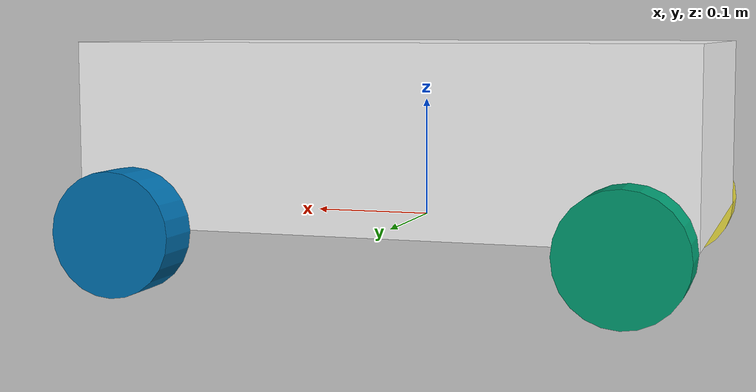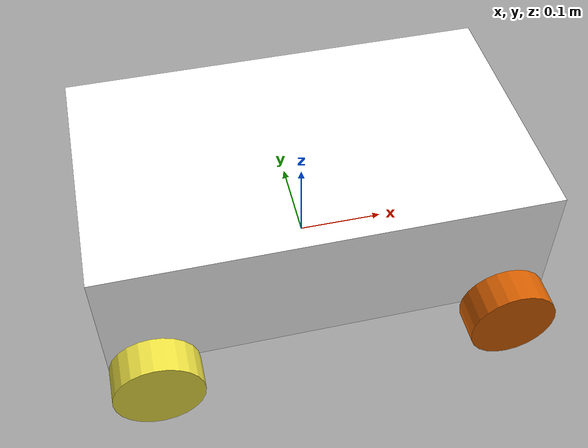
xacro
<?xml version="1.0"?>
<robot xmlns:xacro="http://www.ros.org/wiki/xacro">

  <!-- Included macros -->
  <xacro:include filename="inertial_macros.xacro"/>

  <!-- Constants -->
  <xacro:property name="chassisLength" value="0.5"/>
  <xacro:property name="chassisWidth" value="0.3"/>
  <xacro:property name="chassisHeight" value="0.15"/>
  <xacro:property name="chassisOrigin" value="${chassisLength/2} 0 ${chassisHeight/2}"/>
  <xacro:property name="chassisJointOrigin" value="-${chassisLength/2} 0 0"/>
  <xacro:property name="chassisMass" value="0.5"/>

  <xacro:property name="wheelRadius" value="0.05"/>
  <xacro:property name="wheelLength" value="0.04"/>
  <xacro:property name="wheelMass" value="0.1"/>
  <xacro:property name="wheelOrigin" value="0 0 0"/>

  <xacro:property name="wheel_x_offset" value="0.2"/>
  <xacro:property name="wheel_y_offset" value="0.175"/>
  <xacro:property name="wheel_left_axis" value="0 0 1"/>
  <xacro:property name="wheel_right_axis" value="0 0 -1"/>

  <!-- Materials -->
  <material name="white">
    <color rgba="1 1 1 1"/>
  </material>

  <material name="orange">
    <color rgba="1 0.3 0.1 1"/>
  </material>

  <material name="blue">
    <color rgba="0.2 0.2 1 1"/>
  </material>

  <material name="black">
    <color rgba="0 0 0 1"/>
  </material>

  <!-- BASE LINK -->
  <link name="base_link"></link>

  <!-- CHASSIS LINK -->
  <joint name="chassis_joint" type="fixed">
    <parent link="base_link"/>
    <child link="chassis"/>
    <origin xyz="${chassisJointOrigin}"/>
  </joint>

  <link name="chassis">
    <visual>
      <origin xyz="${chassisOrigin}" rpy="0 0 0"/>
      <geometry>
        <box size="${chassisLength} ${chassisWidth} ${chassisHeight}"/>
      </geometry>
      <material name="white"/>
    </visual>
    <collision>
      <origin xyz="${chassisOrigin}" rpy="0 0 0"/>
      <geometry>
        <box size="${chassisLength} ${chassisWidth} ${chassisHeight}"/>
      </geometry>
    </collision>
    <xacro:inertial_box mass="${chassisMass}" x="${chassisLength}" y="${chassisWidth}" z="${chassisHeight}">
      <origin xyz="${chassisOrigin}" rpy="0 0 0"/>
    </xacro:inertial_box>
  </link>

  <!-- FRONT WHEELS LINK -->
  <joint name="front_left_wheel_joint" type="continuous">
    <parent link="base_link"/>
    <child link="front_left_wheel"/>
    <origin xyz="-${wheel_x_offset} ${wheel_y_offset} 0" rpy="-${pi/2} 0 0"/>
    <axis xyz="${wheel_left_axis}"/>
  </joint>

  <link name="front_left_wheel">
    <visual>
      <geometry>
        <cylinder radius="${wheelRadius}" length="${wheelLength}"/>
      </geometry>
      <materia name="blue"/>
    </visual>
    <collision>
      <geometry>
        <cylinder radius="${wheelRadius}" length="${wheelLength}"/>
      </geometry>
    </collision>
    <xacro:inertial_cylinder mass="${wheelMass}" radius="${wheelRadius}" length="${wheelLength}">
      <origin xyz="${wheelOrigin}" rpy="0 0 0"/>
    </xacro:inertial_cylinder>
  </link>

  <joint name="front_right_wheel_joint" type="continuous">
    <parent link="base_link"/>
    <child link="front_right_wheel"/>
    <origin xyz="-${wheel_x_offset} -${wheel_y_offset} 0" rpy="${pi/2} 0 0"/>
    <axis xyz="${wheel_right_axis}"/>
  </joint>

  <link name="front_right_wheel">
    <visual>
      <geometry>
        <cylinder radius="${wheelRadius}" length="${wheelLength}"/>
      </geometry>
      <materia name="blue"/>
    </visual>
    <collision>
      <geometry>
        <cylinder radius="${wheelRadius}" length="${wheelLength}"/>
      </geometry>
    </collision>
    <xacro:inertial_cylinder mass="${wheelMass}" radius="${wheelRadius}" length="${wheelLength}">
      <origin xyz="${wheelOrigin}" rpy="0 0 0"/>
    </xacro:inertial_cylinder>
  </link>

  <!-- REAR WHEELS LINK -->
  <joint name="rear_left_wheel_joint" type="continuous">
    <parent link="base_link"/>
    <child link="rear_left_wheel"/>
    <origin xyz="${wheel_x_offset} ${wheel_y_offset} 0" rpy="-${pi/2} 0 0"/>
    <axis xyz="${wheel_left_axis}"/>
  </joint>

  <link name="rear_left_wheel">
    <visual>
      <geometry>
        <cylinder radius="${wheelRadius}" length="${wheelLength}"/>
      </geometry>
      <materia name="blue"/>
    </visual>
    <collision>
      <geometry>
        <cylinder radius="${wheelRadius}" length="${wheelLength}"/>
      </geometry>
    </collision>
    <xacro:inertial_cylinder mass="${wheelMass}" radius="${wheelRadius}" length="${wheelLength}">
      <origin xyz="${wheelOrigin}" rpy="0 0 0"/>
    </xacro:inertial_cylinder>
  </link>

  <joint name="rear_right_wheel_joint" type="continuous">
    <parent link="base_link"/>
    <child link="rear_right_wheel"/>
    <origin xyz="${wheel_x_offset} -${wheel_y_offset} 0" rpy="${pi/2} 0 0"/>
    <axis xyz="${wheel_right_axis}"/>
  </joint>

  <link name="rear_right_wheel">
    <visual>
      <geometry>
        <cylinder radius="${wheelRadius}" length="${wheelLength}"/>
      </geometry>
      <materia name="blue"/>
    </visual>
    <collision>
      <geometry>
        <cylinder radius="${wheelRadius}" length="${wheelLength}"/>
      </geometry>
    </collision>
    <xacro:inertial_cylinder mass="${wheelMass}" radius="${wheelRadius}" length="${wheelLength}">
      <origin xyz="${wheelOrigin}" rpy="0 0 0"/>
    </xacro:inertial_cylinder>
  </link>

</robot>

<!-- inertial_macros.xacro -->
<robot xmlns:xacro="http://www.ros.org/wiki/xacro">

  <xacro:macro name="inertial_box" params="mass x y z *origin">
    <inertial>
      <xacro:insert_block name="origin"/>
      <mass value="${mass}"/>
      <inertia ixx="${(1/12) * mass * (y*y + z*z)}" ixy="0.0" ixz="0.0"
                iyy="${(1/12) * mass * (x*x + z*z)}" iyz="0.0"
                izz="${(1/12) * mass * (x*x + y*y)}" />
    </inertial>
  </xacro:macro>

  <xacro:macro name="inertial_cylinder" params="mass length radius *origin">
    <inertial>
      <xacro:insert_block name="origin"/>
      <mass value="${mass}"/>
      <inertia ixx="${(1/12) * mass * (3*radius*radius + length*length)}" ixy="0.0" ixz="0.0"
                iyy="${(1/12) * mass * (3*radius*radius + length*length)}" iyz="0.0"
                izz="${(1/12) * mass * (radius*radius)}" />
    </inertial>
  </xacro:macro>

</robot>
